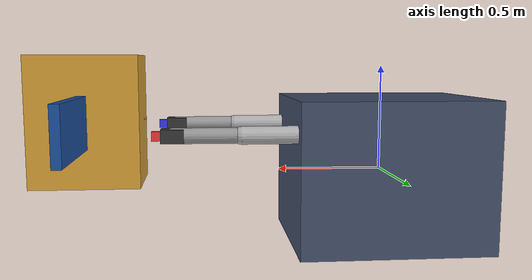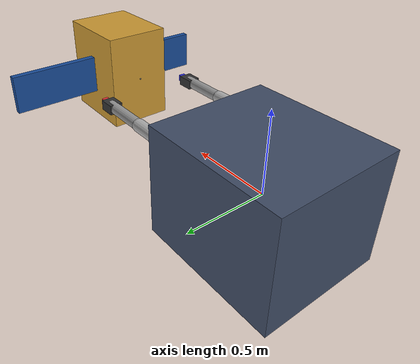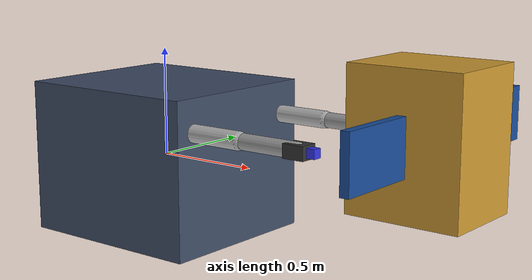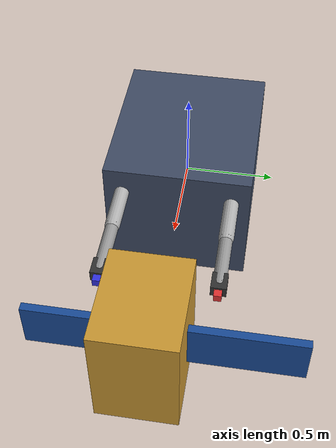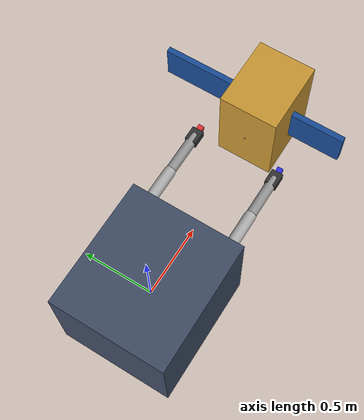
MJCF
<mujoco model="leo_orbital_debris_capture">
  <compiler angle="radian" coordinate="local" balanceinertia="true"/>

  <!-- Microgravity Simulation: gravity="0 0 0", High-Precision Implicit Integrator -->
  <option gravity="0 0 0" timestep="0.001" integrator="implicit" iterations="50" tolerance="1e-10"/>

  <default>
    <joint damping="0.08" armature="0.02"/>
    <geom condim="4" friction="1.5 0.05 0.002" solref="0.004 1.0" solimp="0.9 0.95 0.001 0.5 2"/>
    <motor ctrllimited="true"/>
  </default>

  <worldbody>
    <light directional="true" diffuse="0.9 0.9 0.9" specular="0.3 0.3 0.3" pos="2 2 5" dir="-0.5 -0.5 -1"/>

    <!-- 1. SERVICER SPACECRAFT BUS (Free-Floating Base, Mass: 180 kg)        -->
    <body name="servicer_bus" pos="0 0 0">
      <freejoint name="servicer_root"/>
      <geom name="bus_geom" type="box" size="0.45 0.40 0.35" rgba="0.25 0.30 0.40 1.0" mass="150.0"/>
      <site name="bus_imu" pos="0 0 0.35"/>

      <!-- Arm 1 (Left Arm, 3-DOF articulated) -->
      <body name="arm1_link1" pos="0.35 0.30 0.20">
        <joint name="arm1_joint1" type="hinge" axis="0 0 1" range="-2.5 2.5"/>
        <geom name="arm1_l1_geom" type="capsule" fromto="0 0 0 0.35 0 0" size="0.04" rgba="0.7 0.7 0.7 1" mass="4.0"/>

        <body name="arm1_link2" pos="0.35 0 0">
          <joint name="arm1_joint2" type="hinge" axis="0 1 0" range="-2.0 2.0"/>
          <geom name="arm1_l2_geom" type="capsule" fromto="0 0 0 0.30 0 0" size="0.035" rgba="0.6 0.6 0.6 1" mass="3.5"/>

          <body name="arm1_gripper" pos="0.30 0 0">
            <joint name="arm1_joint3" type="hinge" axis="0 1 0" range="-1.8 1.8"/>
            <geom name="arm1_palm" type="box" size="0.05 0.04 0.03" rgba="0.2 0.2 0.2 1" mass="1.5"/>
            <geom name="arm1_finger_pad" type="box" size="0.04 0.02 0.02" pos="0.05 0 0" rgba="0.9 0.2 0.2 1" mass="0.5"/>
            <site name="arm1_contact_sensor" pos="0.06 0 0"/>
          </body>
        </body>
      </body>

      <!-- Arm 2 (Right Arm, 3-DOF articulated) -->
      <body name="arm2_link1" pos="0.35 -0.30 0.20">
        <joint name="arm2_joint1" type="hinge" axis="0 0 1" range="-2.5 2.5"/>
        <geom name="arm2_l1_geom" type="capsule" fromto="0 0 0 0.35 0 0" size="0.04" rgba="0.7 0.7 0.7 1" mass="4.0"/>

        <body name="arm2_link2" pos="0.35 0 0">
          <joint name="arm2_joint2" type="hinge" axis="0 1 0" range="-2.0 2.0"/>
          <geom name="arm2_l2_geom" type="capsule" fromto="0 0 0 0.30 0 0" size="0.035" rgba="0.6 0.6 0.6 1" mass="3.5"/>

          <body name="arm2_gripper" pos="0.30 0 0">
            <joint name="arm2_joint3" type="hinge" axis="0 1 0" range="-1.8 1.8"/>
            <geom name="arm2_palm" type="box" size="0.05 0.04 0.03" rgba="0.2 0.2 0.2 1" mass="1.5"/>
            <geom name="arm2_finger_pad" type="box" size="0.04 0.02 0.02" pos="0.05 0 0" rgba="0.2 0.2 0.9 1" mass="0.5"/>
            <site name="arm2_contact_sensor" pos="0.06 0 0"/>
          </body>
        </body>
      </body>
    </body>

    <!-- 2. TUMBLING NON-COOPERATIVE SATELLITE TARGET (Mass: 28.0 kg)        -->
    <body name="debris_target" pos="1.4 0 0.25">
      <freejoint name="debris_root"/>
      <geom name="debris_body" type="box" size="0.25 0.20 0.30" rgba="0.8 0.6 0.2 1.0" mass="22.0"/>
      <!-- Asymmetric solar panel mock to generate unconstrained tumbling -->
      <geom name="debris_panel_left" type="box" size="0.02 0.35 0.12" pos="0 0.40 0" rgba="0.1 0.3 0.6 1" mass="3.5"/>
      <geom name="debris_panel_right" type="box" size="0.02 0.25 0.12" pos="0 -0.32 0" rgba="0.1 0.3 0.6 1" mass="2.5"/>
      <site name="debris_grapple_fixture" pos="-0.26 0 0"/>
    </body>
  </worldbody>

  <actuator>
    <!-- Arm 1 Actuators -->
    <motor name="arm1_m1" joint="arm1_joint1" ctrlrange="-80 80"/>
    <motor name="arm1_m2" joint="arm1_joint2" ctrlrange="-80 80"/>
    <motor name="arm1_m3" joint="arm1_joint3" ctrlrange="-50 50"/>

    <!-- Arm 2 Actuators -->
    <motor name="arm2_m1" joint="arm2_joint1" ctrlrange="-80 80"/>
    <motor name="arm2_m2" joint="arm2_joint2" ctrlrange="-80 80"/>
    <motor name="arm2_m3" joint="arm2_joint3" ctrlrange="-50 50"/>

    <!-- Reaction Wheel Bus Attitude Actuators -->
    <motor name="bus_rw_pitch" body="servicer_bus" gear="0 1 0 0 0 0" ctrlrange="-10 10"/>
    <motor name="bus_rw_yaw" body="servicer_bus" gear="0 0 1 0 0 0" ctrlrange="-10 10"/>
  </actuator>

  <sensor>
    <accelerometer name="servicer_accel" site="bus_imu"/>
    <gyro name="servicer_gyro" site="bus_imu"/>
    <touch name="arm1_touch" site="arm1_contact_sensor"/>
    <touch name="arm2_touch" site="arm2_contact_sensor"/>
  </sensor>
</mujoco>
